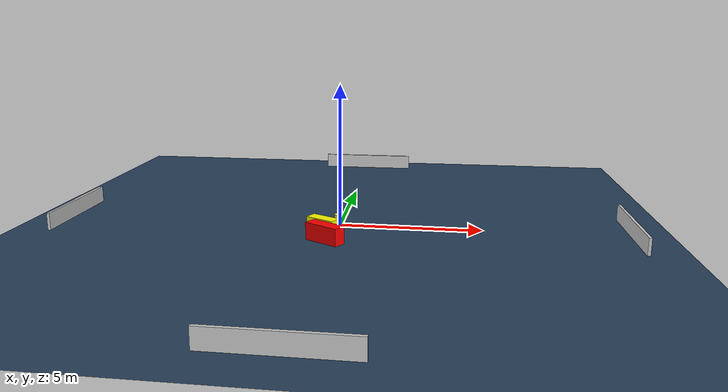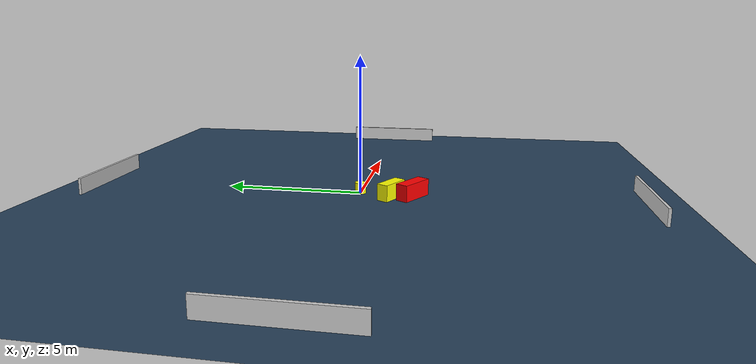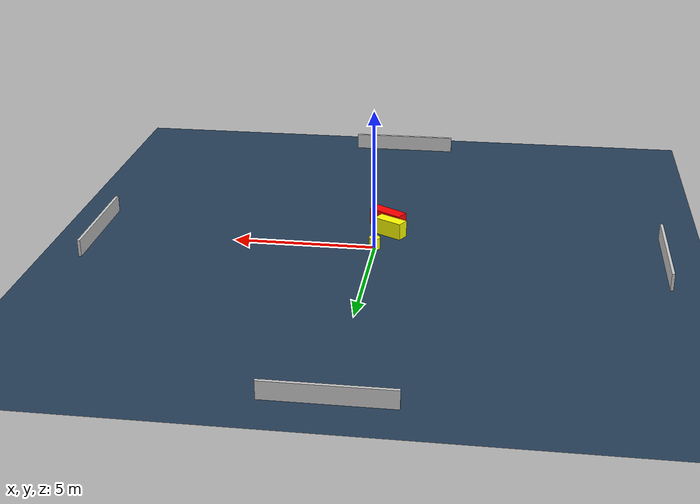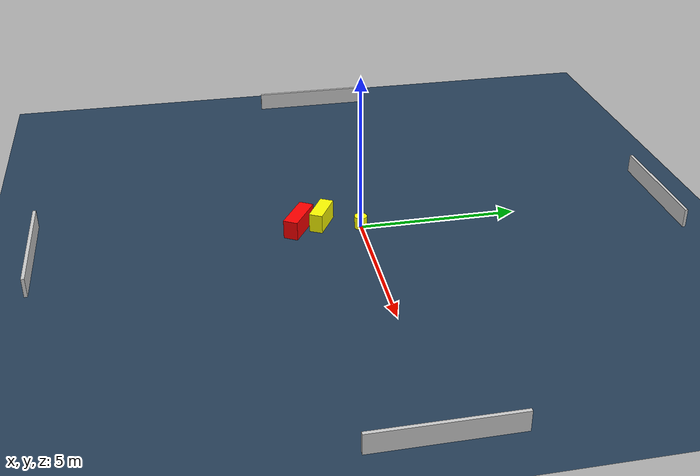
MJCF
<?xml version="1.0" ?>
<mujoco model="generated_environment">
  <option timestep="0.01" integrator="RK4" cone="elliptic"/>
  <default>
    <geom density="1"/>
  </default>
  <asset>
    <texture builtin="gradient" height="3072" name="skybox" rgb1="0.3 0.5 0.7" rgb2="0 0 0" type="skybox" width="512"/>
    <texture builtin="checker" height="300" name="groundplane" rgb1="0.2 0.3 0.4" rgb2="0.1 0.2 0.3" type="2d" width="300"/>
    <material name="groundplane" reflectance="0.2" texrepeat="5 5" texture="groundplane"/>
  </asset>
  <worldbody>
    <light dir="0 0 -1" directional="true" pos="0 0 1.5"/>
    <geom condim="3" friction="0.5 0.005 0.001" material="groundplane" name="floor" pos="0 0 0" size="0 0 0.05" type="plane"/>
    <body name="walls">
      <geom name="wall_1" condim="4" pos="-10.0 0.0 0.3" rgba="0.800000011920929 0.800000011920929 0.800000011920929 1.0" size="0.05 2.0 0.3" type="box"/>
      <geom name="wall_2" condim="4" pos="10.0 0.0 0.3" rgba="0.800000011920929 0.800000011920929 0.800000011920929 1.0" size="0.05 2.0 0.3" type="box"/>
      <geom name="wall_3" condim="4" pos="0.0 -10.0 0.3" rgba="0.800000011920929 0.800000011920929 0.800000011920929 1.0" size="2.0 0.05 0.3" type="box"/>
      <geom name="wall_4" condim="4" pos="0.0 10.0 0.3" rgba="0.800000011920929 0.800000011920929 0.800000011920929 1.0" size="2.0 0.05 0.3" type="box"/>
    </body>
    <body name="robot">
      <joint name="joint_x" type="slide" pos="0 0 0" axis="1 0 0"/>
      <joint name="joint_y" type="slide" pos="0 0 0" axis="0 1 0"/>
      <geom name="robot" type="cylinder" pos="0.0 0.0 0.2" size="0.2 0.2 0.0" mass="5.0" friction="1.0 0.005 0.0001" condim="4" rgba="1.0 1.0 0.0 1.0"/>
    </body>
    <body name="obstacle_1_movable">
      <geom name="obstacle_1_movable" condim="4" pos="-0.42703677059219725 -1.179055351951864 0.3" euler="0 0 241.5177868636849" friction="0.0 0.005 0.001" rgba="1.0 1.0 0.0 1.0" size="0.21349571854995975 0.5406715106797069 0.3" type="box" mass="0.1"/>
      <joint type="free"/>
    </body>
    <body name="obstacle_2_static">
      <geom name="obstacle_2_static" condim="4" pos="-0.24812211568466339 -1.9285518507218888 0.3" euler="0 0 58.77064073986073" friction="0.0 0.005 0.001" rgba="1.0 0.0 0.0 1.0" size="0.23131536612188774 0.6495952094502473 0.3" type="box"/>
    </body>
  </worldbody>
  <actuator>
    <motor name="actuator_x" joint="joint_x" gear="1" ctrlrange="-1 1"/>
    <motor name="actuator_y" joint="joint_y" gear="1" ctrlrange="-1 1"/>
  </actuator>
</mujoco>
